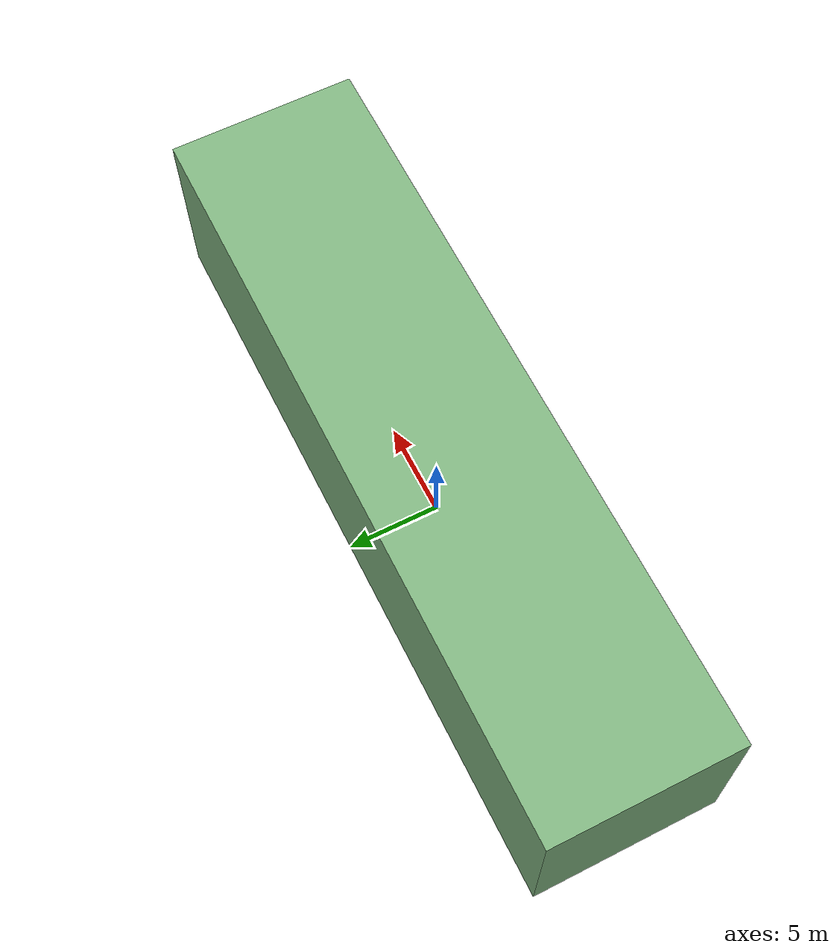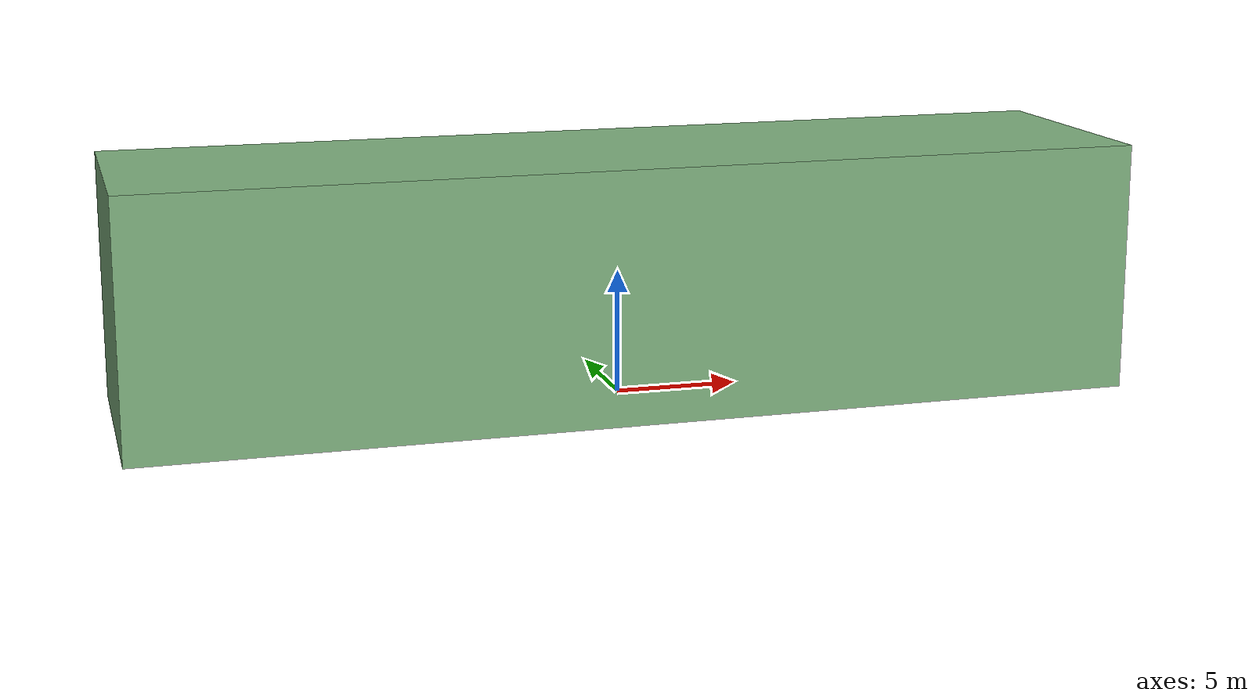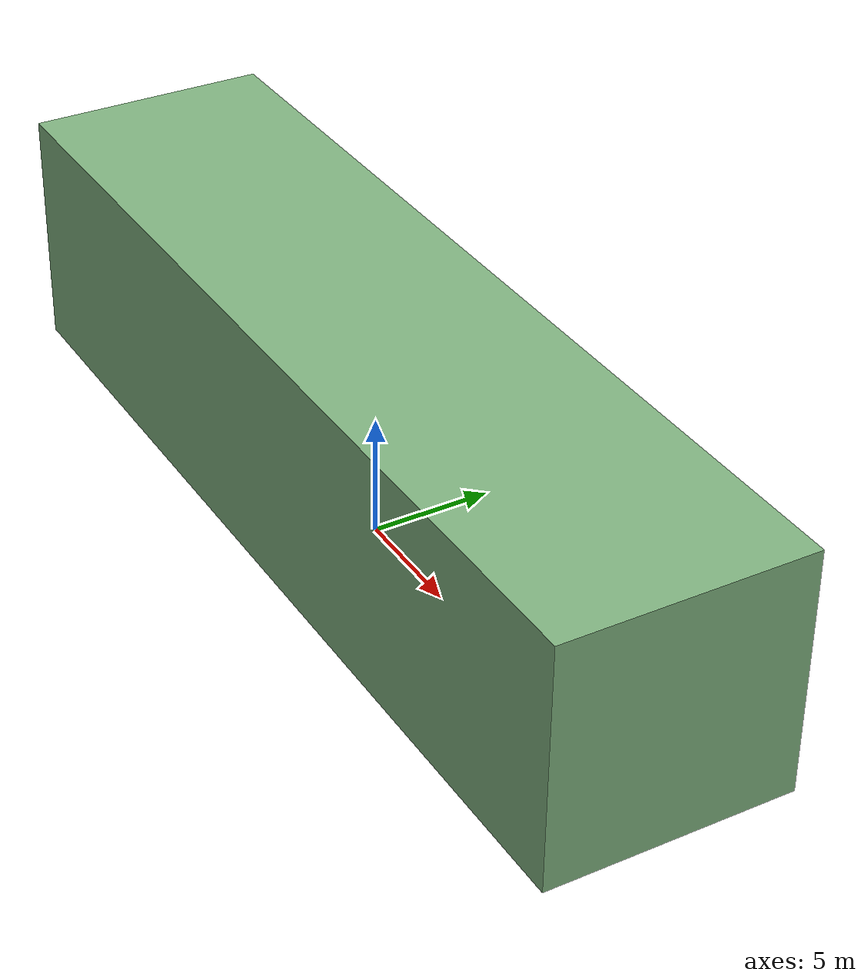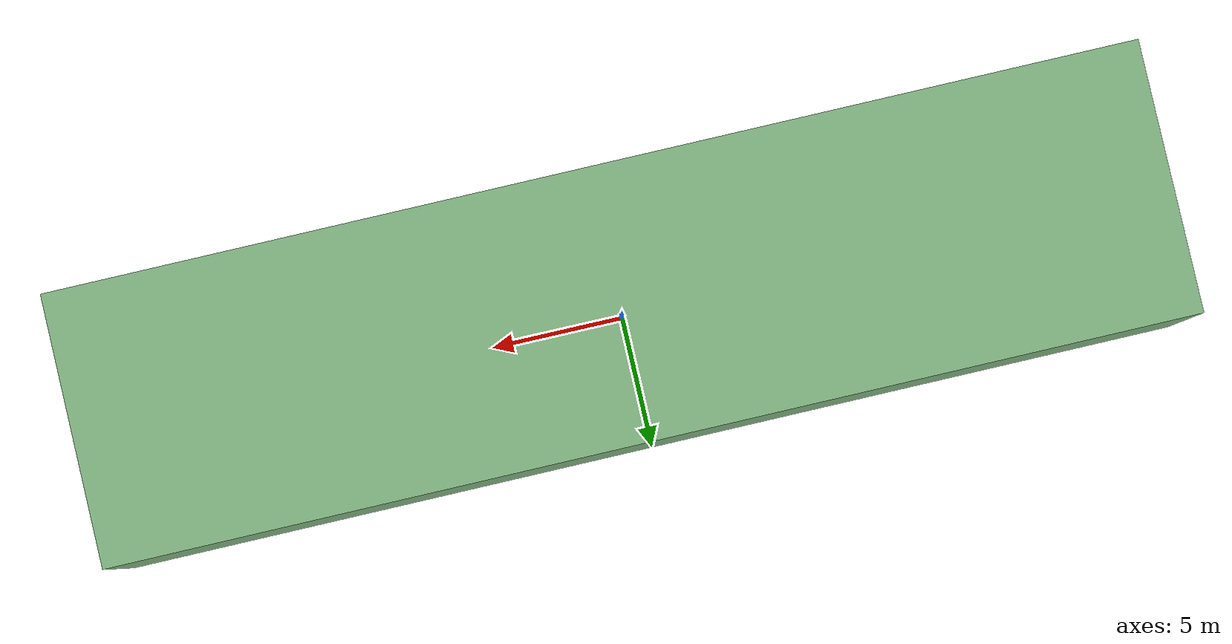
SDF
<?xml version="1.0" encoding="UTF-8" ?>
<sdf version="1.6">
  <world name="default">
    <scene>
      <background>0.1 0.1 0.1 1</background>
      <shadows>true</shadows>
    </scene>
    <physics type="ode">
      <ode>
        <solver>
          <type>quick</type>
          <iters>10</iters>
          <sor>1.3</sor>
        </solver>
        <constraints>
          <cfm>0.0</cfm>
          <erp>0.2</erp>
          <contact_max_correcting_vel>10</contact_max_correcting_vel>
          <contact_surface_layer>0.001</contact_surface_layer>
        </constraints>
      </ode>

      <!-- the default is 0.001, but it is set to 0.01 since the UAV is
           simulated at this frequency. -->
      <max_step_size>0.01</max_step_size>
      <real_time_update_rate>1000</real_time_update_rate>
    </physics>

    <light type="directional" name="directional_light_1">
      <pose>0 20 20 0.1 0.1 0</pose>
      <diffuse>1 1 1 1</diffuse>
      <specular>1 1 1 1</specular>
      <attenuation>
        <range>300</range>
      </attenuation>
      <direction>0 0 -1</direction>
      <cast_shadows>1</cast_shadows>
    </light>

    <include>
      <uri>model://i_tunnel_40x10</uri>
    </include>

    <plugin name="adhocnet_plugin" filename="libAdHocNetPlugin.so" />
  </world>
</sdf>

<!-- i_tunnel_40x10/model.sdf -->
<sdf version="1.6">
  <model name="y_tunnel">
    <static>true</static>
    <link name="y_tunnel_link">
      <pose>0 0 0 0 0 0</pose>
      <collision name="i_tunnel_collision">
        <geometry>
          <mesh>
            <uri>model://i_tunnel_common/i_tunnel.dae</uri>
            <scale>40 10 10</scale>
          </mesh>
        </geometry>
      </collision>
      <visual name="i_tunnel_visual">
        <geometry>
          <mesh>
            <uri>model://i_tunnel_common/i_tunnel.dae</uri>
            <scale>40 10 10</scale>
          </mesh>
        </geometry>
        <cast_shadows>false</cast_shadows>
        <material>
          <ambient>0.3 0.5 0.3 1</ambient>
          <diffuse>0.5 0.7 0.5 1</diffuse>
          <specular>0.5 0.7 0.5 1</specular>
          <emissive>0 0 0 1</emissive>
        </material>
      </visual>
    </link>
  </model>
</sdf>
